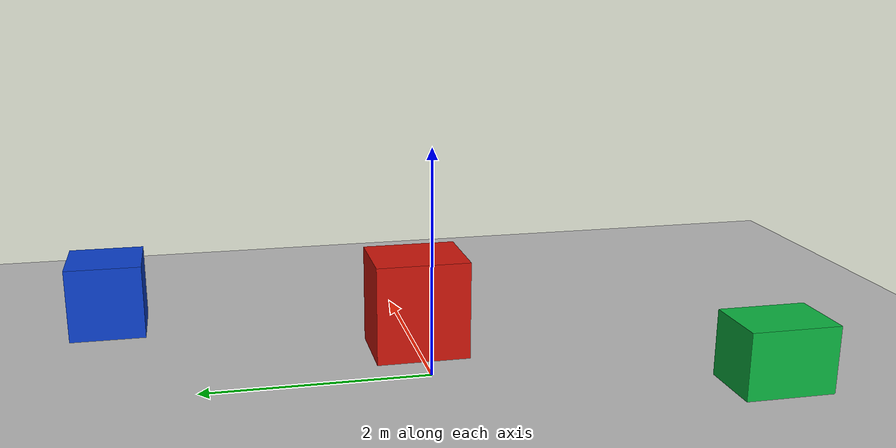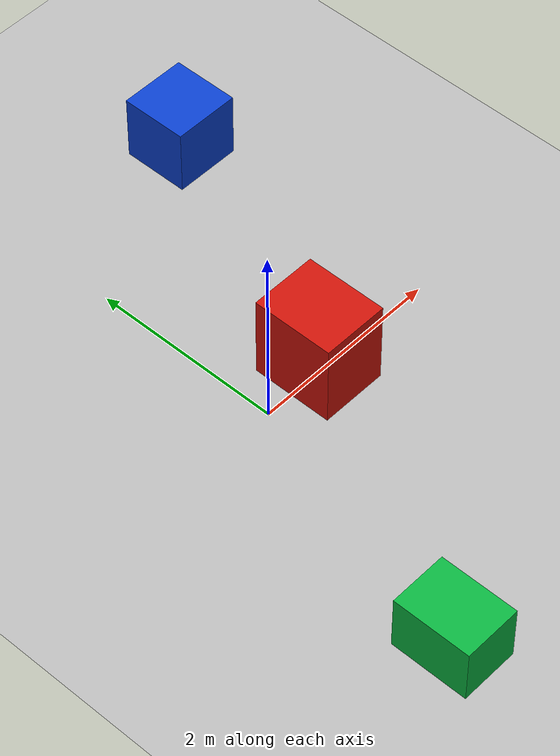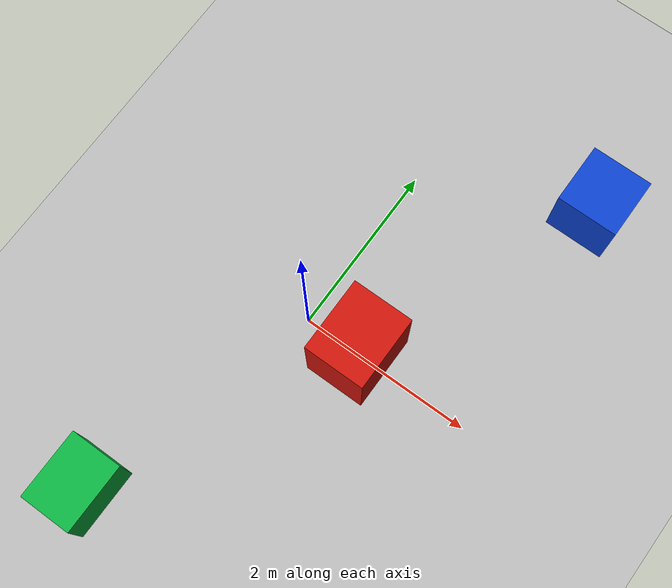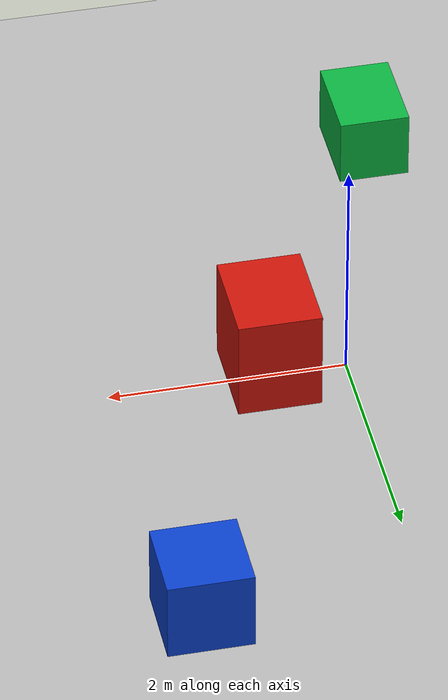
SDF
<?xml version="1.0"?>
<sdf version="1.8">
  <world name="waypoint_obstacle">
    <physics name="1ms" type="ignored">
      <max_step_size>0.001</max_step_size>
      <real_time_factor>1</real_time_factor>
      <!-- Keep /clock and sensor TF at wall-clock pace. Without an explicit
           update rate Gazebo can run ahead of ros_gz_bridge on CPU-only
           machines, leaving Nav2 with stale transforms. -->
      <real_time_update_rate>1000</real_time_update_rate>
    </physics>
    <plugin filename="gz-sim-physics-system" name="gz::sim::systems::Physics"/>
    <plugin filename="gz-sim-imu-system" name="gz::sim::systems::Imu"/>
    <plugin filename="gz-sim-user-commands-system" name="gz::sim::systems::UserCommands"/>
    <plugin filename="gz-sim-scene-broadcaster-system" name="gz::sim::systems::SceneBroadcaster"/>
    <plugin filename="gz-sim-sensors-system" name="gz::sim::systems::Sensors">
      <render_engine>ogre2</render_engine>
    </plugin>

    <light type="directional" name="sun">
      <cast_shadows>true</cast_shadows>
      <pose>0 0 8 0 0 0</pose>
      <diffuse>0.95 0.95 0.95 1</diffuse>
      <specular>0.25 0.25 0.25 1</specular>
      <direction>-0.5 0.1 -0.9</direction>
    </light>

    <model name="ground_plane">
      <static>true</static>
      <link name="link">
        <collision name="collision">
          <geometry>
            <plane><normal>0 0 1</normal><size>30 30</size></plane>
          </geometry>
          <surface><friction><ode><mu>1.5</mu><mu2>1.5</mu2></ode></friction></surface>
        </collision>
        <visual name="visual">
          <geometry><plane><normal>0 0 1</normal><size>30 30</size></plane></geometry>
          <material>
            <ambient>0.72 0.72 0.72 1</ambient>
            <diffuse>0.72 0.72 0.72 1</diffuse>
          </material>
        </visual>
      </link>
    </model>

    <!-- The red box blocks the straight trajectory and leaves room on both sides. -->
    <model name="center_obstacle">
      <static>true</static>
      <pose>0.65 0 0.45 0 0 0</pose>
      <link name="link">
        <collision name="collision"><geometry><box><size>0.70 0.85 0.90</size></box></geometry></collision>
        <visual name="visual">
          <geometry><box><size>0.70 0.85 0.90</size></box></geometry>
          <material><ambient>0.80 0.08 0.04 1</ambient><diffuse>0.80 0.08 0.04 1</diffuse></material>
        </visual>
      </link>
    </model>

    <!-- Additional off-path objects make the full 360-degree scan visible in RViz. -->
    <model name="left_obstacle">
      <static>true</static><pose>1.8 2.8 0.35 0 0 0</pose>
      <link name="link">
        <collision name="collision"><geometry><box><size>0.7 0.7 0.7</size></box></geometry></collision>
        <visual name="visual"><geometry><box><size>0.7 0.7 0.7</size></box></geometry>
          <material><ambient>0.04 0.25 0.80 1</ambient><diffuse>0.04 0.25 0.80 1</diffuse></material></visual>
      </link>
    </model>
    <model name="right_obstacle">
      <static>true</static><pose>-0.8 -2.8 0.30 0 0 0</pose>
      <link name="link">
        <collision name="collision"><geometry><box><size>0.6 0.8 0.6</size></box></geometry></collision>
        <visual name="visual"><geometry><box><size>0.6 0.8 0.6</size></box></geometry>
          <material><ambient>0.04 0.70 0.25 1</ambient><diffuse>0.04 0.70 0.25 1</diffuse></material></visual>
      </link>
    </model>
  </world>
</sdf>
